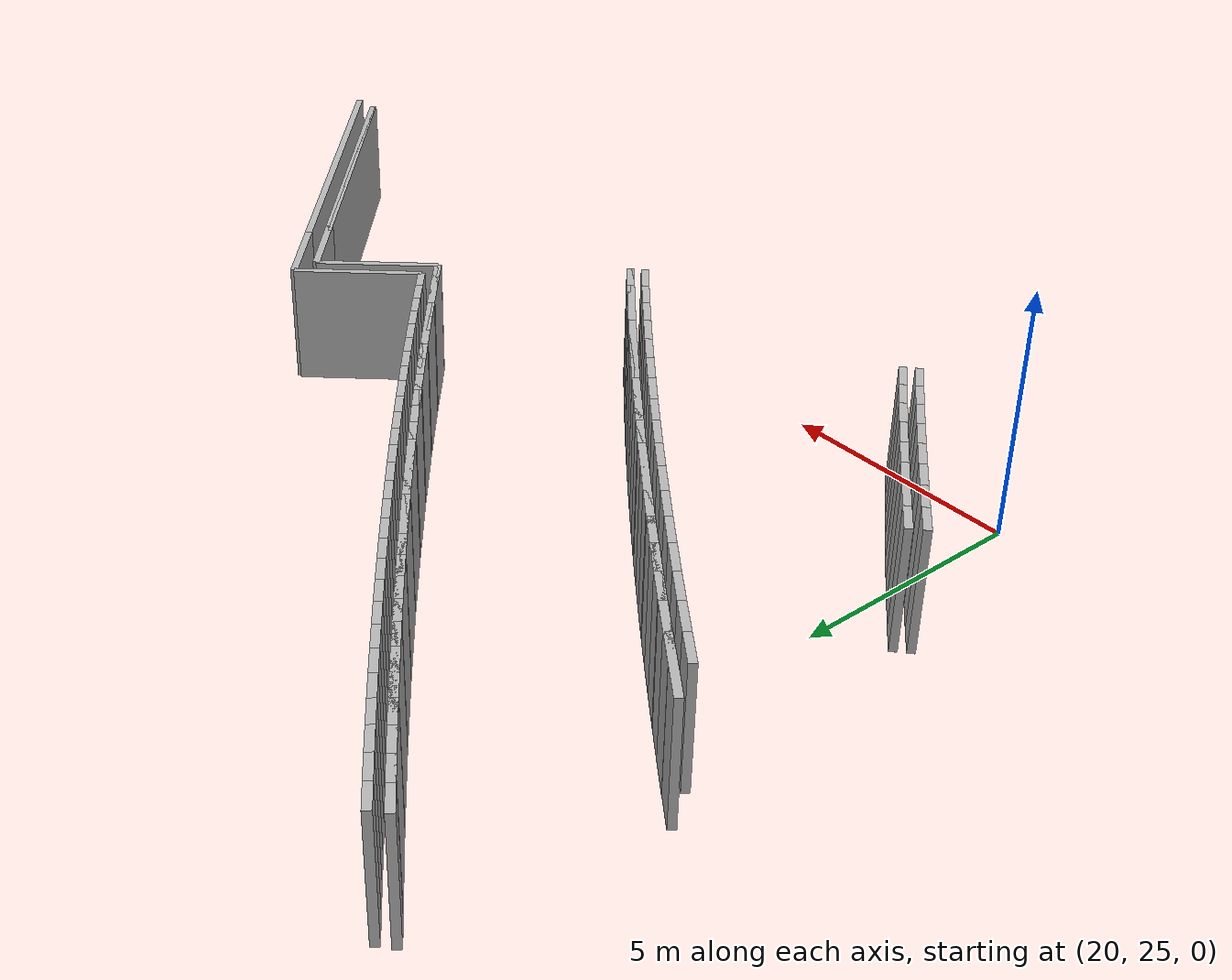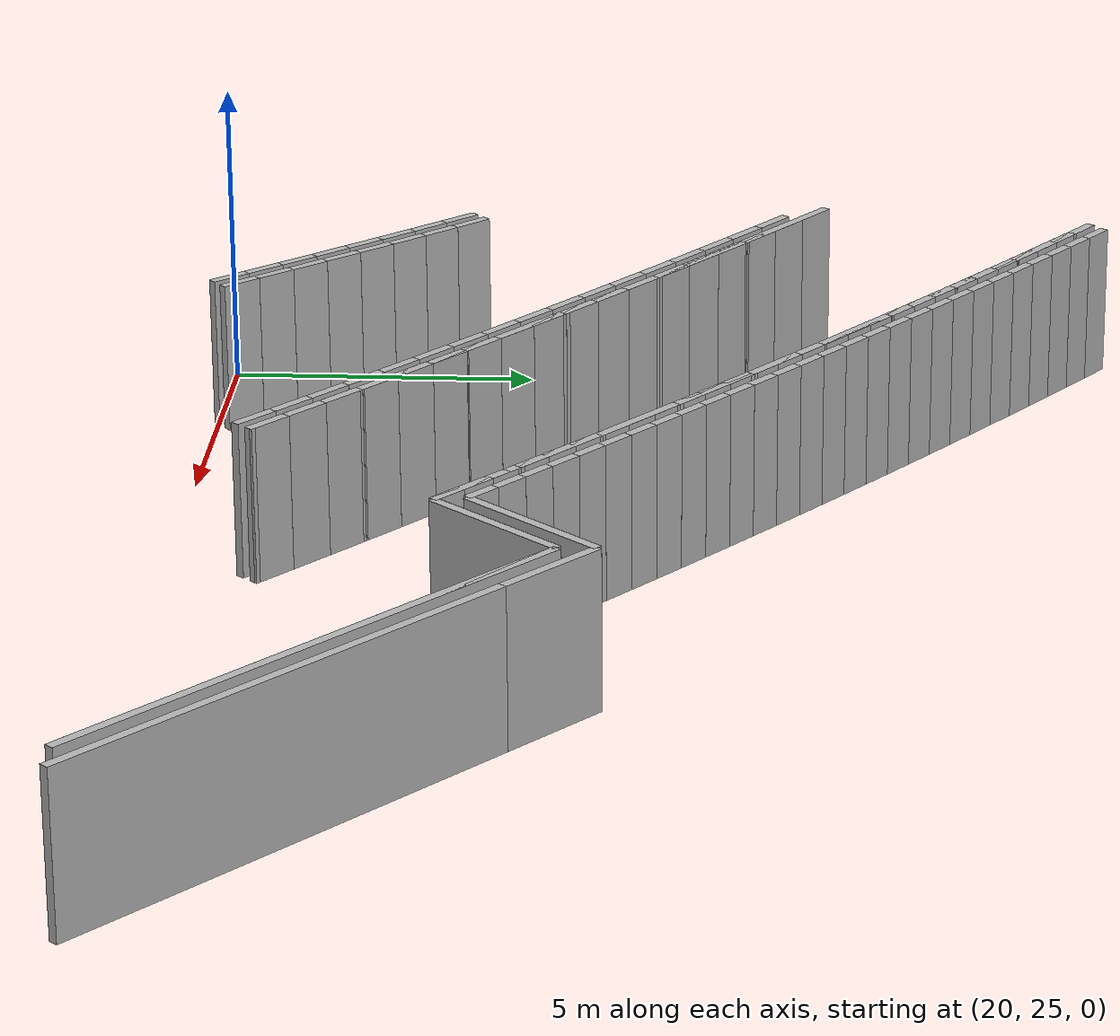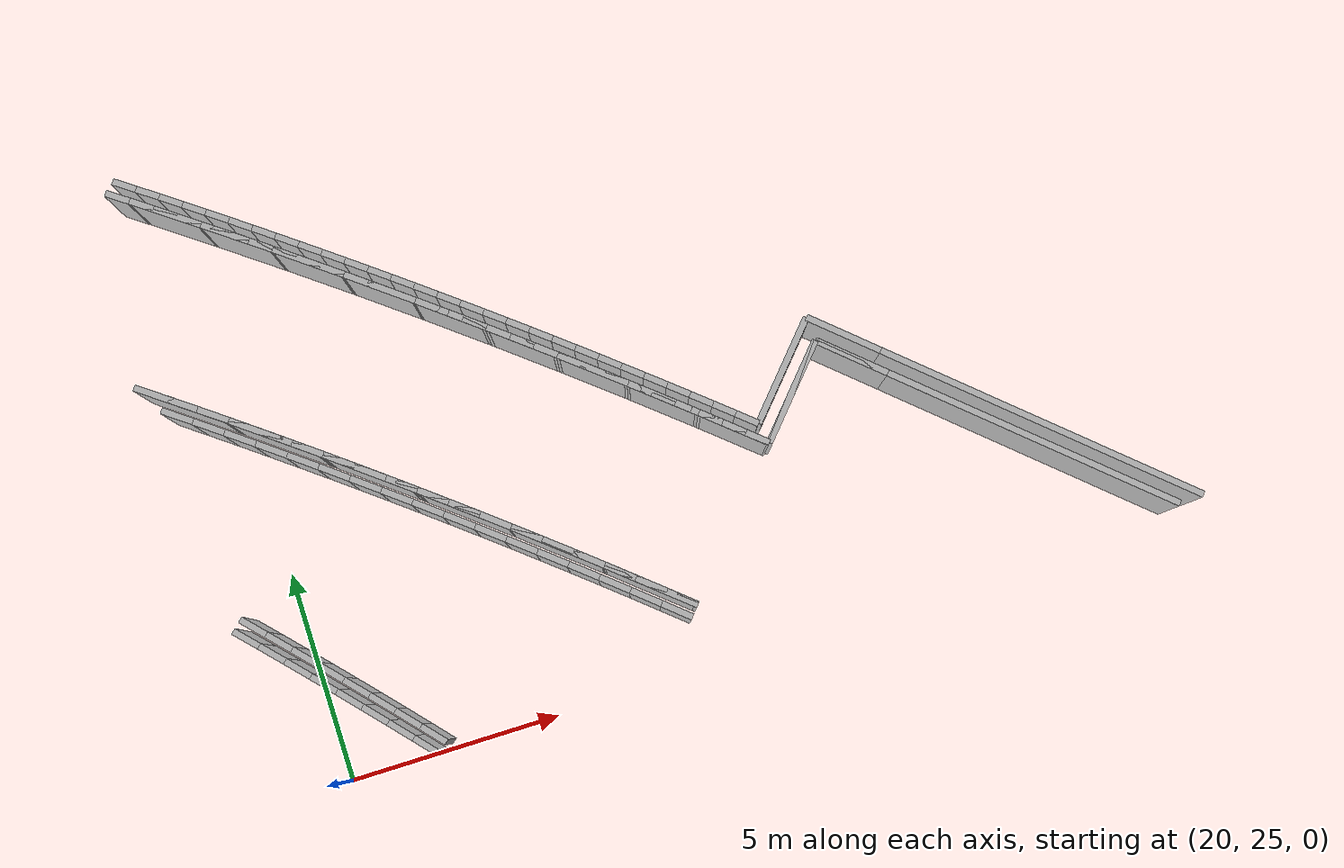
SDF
<sdf version="1.6">
 <model name="sps_0506">
  <static>1</static>
  <allow_auto_disable>0</allow_auto_disable>
  <link name="Wall105">
   <collision name="collision"><geometry><box><size>2.65269 0.15 2.5</size></box></geometry></collision>
   <visual name="visual">
    <geometry><box><size>2.65269 0.15 2.5</size></box></geometry>
    <transparency>0.0</transparency>
   </visual>
   <pose>32.2076 30.9139 1.25 0 0 -2.29715</pose>
  </link>
  <link name="Wall829">
   <collision name="collision"><geometry><box><size>7.95297 0.15 2.5</size></box></geometry></collision>
   <visual name="visual">
    <geometry><box><size>7.95297 0.15 2.5</size></box></geometry>
    <transparency>0.0</transparency>
   </visual>
   <pose>37.4426 28.0385 1.25 0 -0 2.41538</pose>
  </link>
  <link name="Wall830">
   <collision name="collision"><geometry><box><size>1.84698 0.15 2.5</size></box></geometry></collision>
   <visual name="visual">
    <geometry><box><size>1.84698 0.15 2.5</size></box></geometry>
    <transparency>0.0</transparency>
   </visual>
   <pose>33.779 31.2922 1.25 0 -0 2.41538</pose>
  </link>
  <link name="Wall2567">
   <collision name="collision"><geometry><box><size>2.54968 0.15 2.5</size></box></geometry></collision>
   <visual name="visual">
    <geometry><box><size>2.54968 0.15 2.5</size></box></geometry>
    <transparency>0.0</transparency>
   </visual>
   <pose>32.2754 30.3877 1.25 0 -0 0.84483</pose>
  </link>
  <link name="Wall2568">
   <collision name="collision"><geometry><box><size>1.80249 0.15 2.5</size></box></geometry></collision>
   <visual name="visual">
    <geometry><box><size>1.80249 0.15 2.5</size></box></geometry>
    <transparency>0.0</transparency>
   </visual>
   <pose>33.7956 30.7426 1.25 0 0 -0.726159</pose>
  </link>
  <link name="Wall2569">
   <collision name="collision"><geometry><box><size>7.19805 0.15 2.5</size></box></geometry></collision>
   <visual name="visual">
    <geometry><box><size>7.19805 0.15 2.5</size></box></geometry>
    <transparency>0.0</transparency>
   </visual>
   <pose>37.1605 27.7545 1.25 0 0 -0.726159</pose>
  </link>
  <link name="Wall3646">
   <collision name="collision"><geometry><box><size>1.7293 0.15 2.5</size></box></geometry></collision>
   <visual name="visual">
    <geometry><box><size>1.7293 0.15 2.5</size></box></geometry>
    <transparency>0.0</transparency>
   </visual>
   <pose>19.8935 38.5393 1.25 0 0 -0.624024</pose>
  </link>
  <link name="Wall3647">
   <collision name="collision"><geometry><box><size>1.72971 0.15 2.5</size></box></geometry></collision>
   <visual name="visual">
    <geometry><box><size>1.72971 0.15 2.5</size></box></geometry>
    <transparency>0.0</transparency>
   </visual>
   <pose>21.2917 37.5214 1.25 0 0 -0.634545</pose>
  </link>
  <link name="Wall3648">
   <collision name="collision"><geometry><box><size>1.72938 0.15 2.5</size></box></geometry></collision>
   <visual name="visual">
    <geometry><box><size>1.72938 0.15 2.5</size></box></geometry>
    <transparency>0.0</transparency>
   </visual>
   <pose>22.6793 36.4889 1.25 0 0 -0.644934</pose>
  </link>
  <link name="Wall3649">
   <collision name="collision"><geometry><box><size>1.7295 0.15 2.5</size></box></geometry></collision>
   <visual name="visual">
    <geometry><box><size>1.7295 0.15 2.5</size></box></geometry>
    <transparency>0.0</transparency>
   </visual>
   <pose>24.056 35.4422 1.25 0 0 -0.655168</pose>
  </link>
  <link name="Wall3650">
   <collision name="collision"><geometry><box><size>1.72947 0.15 2.5</size></box></geometry></collision>
   <visual name="visual">
    <geometry><box><size>1.72947 0.15 2.5</size></box></geometry>
    <transparency>0.0</transparency>
   </visual>
   <pose>25.4217 34.3812 1.25 0 0 -0.665729</pose>
  </link>
  <link name="Wall3651">
   <collision name="collision"><geometry><box><size>1.7296 0.15 2.5</size></box></geometry></collision>
   <visual name="visual">
    <geometry><box><size>1.7296 0.15 2.5</size></box></geometry>
    <transparency>0.0</transparency>
   </visual>
   <pose>26.7763 33.3059 1.25 0 0 -0.676212</pose>
  </link>
  <link name="Wall3652">
   <collision name="collision"><geometry><box><size>1.72943 0.15 2.5</size></box></geometry></collision>
   <visual name="visual">
    <geometry><box><size>1.72943 0.15 2.5</size></box></geometry>
    <transparency>0.0</transparency>
   </visual>
   <pose>28.1197 32.2166 1.25 0 0 -0.686514</pose>
  </link>
  <link name="Wall3653">
   <collision name="collision"><geometry><box><size>1.72965 0.15 2.5</size></box></geometry></collision>
   <visual name="visual">
    <geometry><box><size>1.72965 0.15 2.5</size></box></geometry>
    <transparency>0.0</transparency>
   </visual>
   <pose>29.4517 31.1134 1.25 0 0 -0.696902</pose>
  </link>
  <link name="Wall3654">
   <collision name="collision"><geometry><box><size>1.72951 0.15 2.5</size></box></geometry></collision>
   <visual name="visual">
    <geometry><box><size>1.72951 0.15 2.5</size></box></geometry>
    <transparency>0.0</transparency>
   </visual>
   <pose>30.7721 29.9963 1.25 0 0 -0.707463</pose>
  </link>
  <link name="Wall3655">
   <collision name="collision"><geometry><box><size>2.54994 0.15 2.5</size></box></geometry></collision>
   <visual name="visual">
    <geometry><box><size>2.54994 0.15 2.5</size></box></geometry>
    <transparency>0.0</transparency>
   </visual>
   <pose>32.2757 30.3878 1.25 0 -0 0.844858</pose>
  </link>
  <link name="Wall3656">
   <collision name="collision"><geometry><box><size>9.00057 0.15 2.5</size></box></geometry></collision>
   <visual name="visual">
    <geometry><box><size>9.00057 0.15 2.5</size></box></geometry>
    <transparency>0.0</transparency>
   </visual>
   <pose>36.4869 28.353 1.25 0 0 -0.726192</pose>
  </link>
  <link name="Wall3664">
   <collision name="collision"><geometry><box><size>2.27684 0.15 2.5</size></box></geometry></collision>
   <visual name="visual">
    <geometry><box><size>2.27684 0.15 2.5</size></box></geometry>
    <transparency>0.0</transparency>
   </visual>
   <pose>27.9263 27.1626 1.25 0 -0 2.43684</pose>
  </link>
  <link name="Wall3665">
   <collision name="collision"><geometry><box><size>2.27703 0.15 2.5</size></box></geometry></collision>
   <visual name="visual">
    <geometry><box><size>2.27703 0.15 2.5</size></box></geometry>
    <transparency>0.0</transparency>
   </visual>
   <pose>26.1815 28.6255 1.25 0 -0 2.4508</pose>
  </link>
  <link name="Wall3666">
   <collision name="collision"><geometry><box><size>2.27668 0.15 2.5</size></box></geometry></collision>
   <visual name="visual">
    <geometry><box><size>2.27668 0.15 2.5</size></box></geometry>
    <transparency>0.0</transparency>
   </visual>
   <pose>24.4167 30.064 1.25 0 -0 2.46461</pose>
  </link>
  <link name="Wall3667">
   <collision name="collision"><geometry><box><size>2.2769 0.15 2.5</size></box></geometry></collision>
   <visual name="visual">
    <geometry><box><size>2.2769 0.15 2.5</size></box></geometry>
    <transparency>0.0</transparency>
   </visual>
   <pose>22.6322 31.4778 1.25 0 -0 2.47861</pose>
  </link>
  <link name="Wall3668">
   <collision name="collision"><geometry><box><size>2.27673 0.15 2.5</size></box></geometry></collision>
   <visual name="visual">
    <geometry><box><size>2.27673 0.15 2.5</size></box></geometry>
    <transparency>0.0</transparency>
   </visual>
   <pose>20.828 32.8665 1.25 0 -0 2.49259</pose>
  </link>
  <link name="Wall3669">
   <collision name="collision"><geometry><box><size>2.27664 0.15 2.5</size></box></geometry></collision>
   <visual name="visual">
    <geometry><box><size>2.27664 0.15 2.5</size></box></geometry>
    <transparency>0.0</transparency>
   </visual>
   <pose>19.0047 34.2298 1.25 0 -0 2.50652</pose>
  </link>
  <link name="Wall6866">
   <collision name="collision"><geometry><box><size>0.576462 0.15 2.5</size></box></geometry></collision>
   <visual name="visual">
    <geometry><box><size>0.576462 0.15 2.5</size></box></geometry>
    <transparency>0.0</transparency>
   </visual>
   <pose>31.2107 29.6224 1.25 0 -0 2.43053</pose>
  </link>
  <link name="Wall6867">
   <collision name="collision"><geometry><box><size>0.5765 0.15 2.5</size></box></geometry></collision>
   <visual name="visual">
    <geometry><box><size>0.5765 0.15 2.5</size></box></geometry>
    <transparency>0.0</transparency>
   </visual>
   <pose>30.7732 29.9978 1.25 0 -0 2.43436</pose>
  </link>
  <link name="Wall6868">
   <collision name="collision"><geometry><box><size>0.576652 0.15 2.5</size></box></geometry></collision>
   <visual name="visual">
    <geometry><box><size>0.576652 0.15 2.5</size></box></geometry>
    <transparency>0.0</transparency>
   </visual>
   <pose>30.3343 30.3717 1.25 0 -0 2.43764</pose>
  </link>
  <link name="Wall6869">
   <collision name="collision"><geometry><box><size>0.576519 0.15 2.5</size></box></geometry></collision>
   <visual name="visual">
    <geometry><box><size>0.576519 0.15 2.5</size></box></geometry>
    <transparency>0.0</transparency>
   </visual>
   <pose>29.8941 30.7441 1.25 0 -0 2.44119</pose>
  </link>
  <link name="Wall6870">
   <collision name="collision"><geometry><box><size>0.576433 0.15 2.5</size></box></geometry></collision>
   <visual name="visual">
    <geometry><box><size>0.576433 0.15 2.5</size></box></geometry>
    <transparency>0.0</transparency>
   </visual>
   <pose>29.4527 31.1149 1.25 0 -0 2.44466</pose>
  </link>
  <link name="Wall6871">
   <collision name="collision"><geometry><box><size>0.576612 0.15 2.5</size></box></geometry></collision>
   <visual name="visual">
    <geometry><box><size>0.576612 0.15 2.5</size></box></geometry>
    <transparency>0.0</transparency>
   </visual>
   <pose>29.0099 31.4842 1.25 0 -0 2.44809</pose>
  </link>
  <link name="Wall6872">
   <collision name="collision"><geometry><box><size>0.576376 0.15 2.5</size></box></geometry></collision>
   <visual name="visual">
    <geometry><box><size>0.576376 0.15 2.5</size></box></geometry>
    <transparency>0.0</transparency>
   </visual>
   <pose>28.5659 31.8519 1.25 0 -0 2.45174</pose>
  </link>
  <link name="Wall6873">
   <collision name="collision"><geometry><box><size>0.576569 0.15 2.5</size></box></geometry></collision>
   <visual name="visual">
    <geometry><box><size>0.576569 0.15 2.5</size></box></geometry>
    <transparency>0.0</transparency>
   </visual>
   <pose>28.1207 32.218 1.25 0 -0 2.45516</pose>
  </link>
  <link name="Wall6874">
   <collision name="collision"><geometry><box><size>0.576588 0.15 2.5</size></box></geometry></collision>
   <visual name="visual">
    <geometry><box><size>0.576588 0.15 2.5</size></box></geometry>
    <transparency>0.0</transparency>
   </visual>
   <pose>27.6741 32.5827 1.25 0 -0 2.45847</pose>
  </link>
  <link name="Wall6875">
   <collision name="collision"><geometry><box><size>0.57646 0.15 2.5</size></box></geometry></collision>
   <visual name="visual">
    <geometry><box><size>0.57646 0.15 2.5</size></box></geometry>
    <transparency>0.0</transparency>
   </visual>
   <pose>27.2262 32.9458 1.25 0 -0 2.46211</pose>
  </link>
  <link name="Wall6876">
   <collision name="collision"><geometry><box><size>0.576444 0.15 2.5</size></box></geometry></collision>
   <visual name="visual">
    <geometry><box><size>0.576444 0.15 2.5</size></box></geometry>
    <transparency>0.0</transparency>
   </visual>
   <pose>26.7772 33.3073 1.25 0 -0 2.46535</pose>
  </link>
  <link name="Wall6877">
   <collision name="collision"><geometry><box><size>0.576407 0.15 2.5</size></box></geometry></collision>
   <visual name="visual">
    <geometry><box><size>0.576407 0.15 2.5</size></box></geometry>
    <transparency>0.0</transparency>
   </visual>
   <pose>26.327 33.6673 1.25 0 -0 2.46882</pose>
  </link>
  <link name="Wall6878">
   <collision name="collision"><geometry><box><size>0.576633 0.15 2.5</size></box></geometry></collision>
   <visual name="visual">
    <geometry><box><size>0.576633 0.15 2.5</size></box></geometry>
    <transparency>0.0</transparency>
   </visual>
   <pose>25.8755 34.0258 1.25 0 -0 2.47224</pose>
  </link>
  <link name="Wall6879">
   <collision name="collision"><geometry><box><size>0.576448 0.15 2.5</size></box></geometry></collision>
   <visual name="visual">
    <geometry><box><size>0.576448 0.15 2.5</size></box></geometry>
    <transparency>0.0</transparency>
   </visual>
   <pose>25.4228 34.3827 1.25 0 -0 2.4759</pose>
  </link>
  <link name="Wall6880">
   <collision name="collision"><geometry><box><size>0.576544 0.15 2.5</size></box></geometry></collision>
   <visual name="visual">
    <geometry><box><size>0.576544 0.15 2.5</size></box></geometry>
    <transparency>0.0</transparency>
   </visual>
   <pose>24.9688 34.738 1.25 0 -0 2.47912</pose>
  </link>
  <link name="Wall6881">
   <collision name="collision"><geometry><box><size>0.576529 0.15 2.5</size></box></geometry></collision>
   <visual name="visual">
    <geometry><box><size>0.576529 0.15 2.5</size></box></geometry>
    <transparency>0.0</transparency>
   </visual>
   <pose>24.5135 35.0917 1.25 0 -0 2.48312</pose>
  </link>
  <link name="Wall6882">
   <collision name="collision"><geometry><box><size>0.576531 0.15 2.5</size></box></geometry></collision>
   <visual name="visual">
    <geometry><box><size>0.576531 0.15 2.5</size></box></geometry>
    <transparency>0.0</transparency>
   </visual>
   <pose>24.057 35.4438 1.25 0 -0 2.48606</pose>
  </link>
  <link name="Wall6883">
   <collision name="collision"><geometry><box><size>0.576447 0.15 2.5</size></box></geometry></collision>
   <visual name="visual">
    <geometry><box><size>0.576447 0.15 2.5</size></box></geometry>
    <transparency>0.0</transparency>
   </visual>
   <pose>23.5993 35.7943 1.25 0 -0 2.49009</pose>
  </link>
  <link name="Wall6884">
   <collision name="collision"><geometry><box><size>0.576606 0.15 2.5</size></box></geometry></collision>
   <visual name="visual">
    <geometry><box><size>0.576606 0.15 2.5</size></box></geometry>
    <transparency>0.0</transparency>
   </visual>
   <pose>23.1403 36.1432 1.25 0 -0 2.49322</pose>
  </link>
  <link name="Wall6885">
   <collision name="collision"><geometry><box><size>0.576368 0.15 2.5</size></box></geometry></collision>
   <visual name="visual">
    <geometry><box><size>0.576368 0.15 2.5</size></box></geometry>
    <transparency>0.0</transparency>
   </visual>
   <pose>22.6802 36.4905 1.25 0 -0 2.49676</pose>
  </link>
  <link name="Wall6886">
   <collision name="collision"><geometry><box><size>0.576417 0.15 2.5</size></box></geometry></collision>
   <visual name="visual">
    <geometry><box><size>0.576417 0.15 2.5</size></box></geometry>
    <transparency>0.0</transparency>
   </visual>
   <pose>22.219 36.8362 1.25 0 -0 2.5</pose>
  </link>
  <link name="Wall6887">
   <collision name="collision"><geometry><box><size>0.576596 0.15 2.5</size></box></geometry></collision>
   <visual name="visual">
    <geometry><box><size>0.576596 0.15 2.5</size></box></geometry>
    <transparency>0.0</transparency>
   </visual>
   <pose>21.7565 37.1804 1.25 0 -0 2.50366</pose>
  </link>
  <link name="Wall6888">
   <collision name="collision"><geometry><box><size>0.576671 0.15 2.5</size></box></geometry></collision>
   <visual name="visual">
    <geometry><box><size>0.576671 0.15 2.5</size></box></geometry>
    <transparency>0.0</transparency>
   </visual>
   <pose>21.2927 37.523 1.25 0 -0 2.50705</pose>
  </link>
  <link name="Wall6889">
   <collision name="collision"><geometry><box><size>0.576448 0.15 2.5</size></box></geometry></collision>
   <visual name="visual">
    <geometry><box><size>0.576448 0.15 2.5</size></box></geometry>
    <transparency>0.0</transparency>
   </visual>
   <pose>20.8278 37.864 1.25 0 -0 2.51044</pose>
  </link>
  <link name="Wall6890">
   <collision name="collision"><geometry><box><size>0.576429 0.15 2.5</size></box></geometry></collision>
   <visual name="visual">
    <geometry><box><size>0.576429 0.15 2.5</size></box></geometry>
    <transparency>0.0</transparency>
   </visual>
   <pose>20.3617 38.2033 1.25 0 -0 2.51408</pose>
  </link>
  <link name="Wall6891">
   <collision name="collision"><geometry><box><size>0.576552 0.15 2.5</size></box></geometry></collision>
   <visual name="visual">
    <geometry><box><size>0.576552 0.15 2.5</size></box></geometry>
    <transparency>0.0</transparency>
   </visual>
   <pose>19.8945 38.5409 1.25 0 -0 2.51776</pose>
  </link>
  <link name="Wall6892">
   <collision name="collision"><geometry><box><size>0.57652 0.15 2.5</size></box></geometry></collision>
   <visual name="visual">
    <geometry><box><size>0.57652 0.15 2.5</size></box></geometry>
    <transparency>0.0</transparency>
   </visual>
   <pose>19.426 38.8769 1.25 0 -0 2.52111</pose>
  </link>
  <link name="Wall6893">
   <collision name="collision"><geometry><box><size>0.57631 0.15 2.5</size></box></geometry></collision>
   <visual name="visual">
    <geometry><box><size>0.57631 0.15 2.5</size></box></geometry>
    <transparency>0.0</transparency>
   </visual>
   <pose>18.9564 39.2113 1.25 0 -0 2.52436</pose>
  </link>
  <link name="Wall9582">
   <collision name="collision"><geometry><box><size>0.757762 0.15 2.5</size></box></geometry></collision>
   <visual name="visual">
    <geometry><box><size>0.757762 0.15 2.5</size></box></geometry>
    <transparency>0.0</transparency>
   </visual>
   <pose>28.3106 26.4453 1.25 0 -0 2.4307</pose>
  </link>
  <link name="Wall9583">
   <collision name="collision"><geometry><box><size>0.757564 0.15 2.5</size></box></geometry></collision>
   <visual name="visual">
    <geometry><box><size>0.757564 0.15 2.5</size></box></geometry>
    <transparency>0.0</transparency>
   </visual>
   <pose>27.7353 26.9383 1.25 0 -0 2.43547</pose>
  </link>
  <link name="Wall9584">
   <collision name="collision"><geometry><box><size>0.757562 0.15 2.5</size></box></geometry></collision>
   <visual name="visual">
    <geometry><box><size>0.757562 0.15 2.5</size></box></geometry>
    <transparency>0.0</transparency>
   </visual>
   <pose>27.1576 27.4285 1.25 0 -0 2.44032</pose>
  </link>
  <link name="Wall9585">
   <collision name="collision"><geometry><box><size>0.757735 0.15 2.5</size></box></geometry></collision>
   <visual name="visual">
    <geometry><box><size>0.757735 0.15 2.5</size></box></geometry>
    <transparency>0.0</transparency>
   </visual>
   <pose>26.5777 27.916 1.25 0 -0 2.44494</pose>
  </link>
  <link name="Wall9586">
   <collision name="collision"><geometry><box><size>0.757558 0.15 2.5</size></box></geometry></collision>
   <visual name="visual">
    <geometry><box><size>0.757558 0.15 2.5</size></box></geometry>
    <transparency>0.0</transparency>
   </visual>
   <pose>25.9954 28.4007 1.25 0 -0 2.44988</pose>
  </link>
  <link name="Wall9587">
   <collision name="collision"><geometry><box><size>0.757536 0.15 2.5</size></box></geometry></collision>
   <visual name="visual">
    <geometry><box><size>0.757536 0.15 2.5</size></box></geometry>
    <transparency>0.0</transparency>
   </visual>
   <pose>25.4108 28.8826 1.25 0 -0 2.45434</pose>
  </link>
  <link name="Wall9588">
   <collision name="collision"><geometry><box><size>0.757663 0.15 2.5</size></box></geometry></collision>
   <visual name="visual">
    <geometry><box><size>0.757663 0.15 2.5</size></box></geometry>
    <transparency>0.0</transparency>
   </visual>
   <pose>24.8241 29.3619 1.25 0 -0 2.45885</pose>
  </link>
  <link name="Wall9589">
   <collision name="collision"><geometry><box><size>0.757547 0.15 2.5</size></box></geometry></collision>
   <visual name="visual">
    <geometry><box><size>0.757547 0.15 2.5</size></box></geometry>
    <transparency>0.0</transparency>
   </visual>
   <pose>24.2352 29.8384 1.25 0 -0 2.46391</pose>
  </link>
  <link name="Wall9590">
   <collision name="collision"><geometry><box><size>0.757564 0.15 2.5</size></box></geometry></collision>
   <visual name="visual">
    <geometry><box><size>0.757564 0.15 2.5</size></box></geometry>
    <transparency>0.0</transparency>
   </visual>
   <pose>23.644 30.3121 1.25 0 -0 2.46826</pose>
  </link>
  <link name="Wall9591">
   <collision name="collision"><geometry><box><size>0.757569 0.15 2.5</size></box></geometry></collision>
   <visual name="visual">
    <geometry><box><size>0.757569 0.15 2.5</size></box></geometry>
    <transparency>0.0</transparency>
   </visual>
   <pose>23.0506 30.783 1.25 0 -0 2.47331</pose>
  </link>
  <link name="Wall9592">
   <collision name="collision"><geometry><box><size>0.757525 0.15 2.5</size></box></geometry></collision>
   <visual name="visual">
    <geometry><box><size>0.757525 0.15 2.5</size></box></geometry>
    <transparency>0.0</transparency>
   </visual>
   <pose>22.4549 31.251 1.25 0 -0 2.47808</pose>
  </link>
  <link name="Wall9593">
   <collision name="collision"><geometry><box><size>0.757577 0.15 2.5</size></box></geometry></collision>
   <visual name="visual">
    <geometry><box><size>0.757577 0.15 2.5</size></box></geometry>
    <transparency>0.0</transparency>
   </visual>
   <pose>21.857 31.7163 1.25 0 -0 2.48232</pose>
  </link>
  <link name="Wall9594">
   <collision name="collision"><geometry><box><size>0.757599 0.15 2.5</size></box></geometry></collision>
   <visual name="visual">
    <geometry><box><size>0.757599 0.15 2.5</size></box></geometry>
    <transparency>0.0</transparency>
   </visual>
   <pose>21.257 32.1788 1.25 0 -0 2.48742</pose>
  </link>
  <link name="Wall9595">
   <collision name="collision"><geometry><box><size>0.757643 0.15 2.5</size></box></geometry></collision>
   <visual name="visual">
    <geometry><box><size>0.757643 0.15 2.5</size></box></geometry>
    <transparency>0.0</transparency>
   </visual>
   <pose>20.6547 32.6384 1.25 0 -0 2.49213</pose>
  </link>
  <link name="Wall9596">
   <collision name="collision"><geometry><box><size>0.757703 0.15 2.5</size></box></geometry></collision>
   <visual name="visual">
    <geometry><box><size>0.757703 0.15 2.5</size></box></geometry>
    <transparency>0.0</transparency>
   </visual>
   <pose>20.0503 33.0952 1.25 0 -0 2.49683</pose>
  </link>
  <link name="Wall9597">
   <collision name="collision"><geometry><box><size>0.757634 0.15 2.5</size></box></geometry></collision>
   <visual name="visual">
    <geometry><box><size>0.757634 0.15 2.5</size></box></geometry>
    <transparency>0.0</transparency>
   </visual>
   <pose>19.4437 33.5492 1.25 0 -0 2.50139</pose>
  </link>
  <link name="Wall9598">
   <collision name="collision"><geometry><box><size>0.757654 0.15 2.5</size></box></geometry></collision>
   <visual name="visual">
    <geometry><box><size>0.757654 0.15 2.5</size></box></geometry>
    <transparency>0.0</transparency>
   </visual>
   <pose>18.835 34.0003 1.25 0 -0 2.50623</pose>
  </link>
  <link name="Wall21079">
   <collision name="collision"><geometry><box><size>0.759065 0.15 2.5</size></box></geometry></collision>
   <visual name="visual">
    <geometry><box><size>0.759065 0.15 2.5</size></box></geometry>
    <transparency>0.0</transparency>
   </visual>
   <pose>28.5052 26.6721 1.25 0 -0 2.43229</pose>
  </link>
  <link name="Wall21080">
   <collision name="collision"><geometry><box><size>0.75907 0.15 2.5</size></box></geometry></collision>
   <visual name="visual">
    <geometry><box><size>0.75907 0.15 2.5</size></box></geometry>
    <transparency>0.0</transparency>
   </visual>
   <pose>27.9282 27.1652 1.25 0 -0 2.43673</pose>
  </link>
  <link name="Wall21081">
   <collision name="collision"><geometry><box><size>0.758933 0.15 2.5</size></box></geometry></collision>
   <visual name="visual">
    <geometry><box><size>0.758933 0.15 2.5</size></box></geometry>
    <transparency>0.0</transparency>
   </visual>
   <pose>27.3489 27.6556 1.25 0 -0 2.44143</pose>
  </link>
  <link name="Wall21082">
   <collision name="collision"><geometry><box><size>0.758977 0.15 2.5</size></box></geometry></collision>
   <visual name="visual">
    <geometry><box><size>0.758977 0.15 2.5</size></box></geometry>
    <transparency>0.0</transparency>
   </visual>
   <pose>26.7674 28.1433 1.25 0 -0 2.44599</pose>
  </link>
  <link name="Wall21083">
   <collision name="collision"><geometry><box><size>0.758967 0.15 2.5</size></box></geometry></collision>
   <visual name="visual">
    <geometry><box><size>0.758967 0.15 2.5</size></box></geometry>
    <transparency>0.0</transparency>
   </visual>
   <pose>26.1836 28.6283 1.25 0 -0 2.45079</pose>
  </link>
  <link name="Wall21084">
   <collision name="collision"><geometry><box><size>0.758966 0.15 2.5</size></box></geometry></collision>
   <visual name="visual">
    <geometry><box><size>0.758966 0.15 2.5</size></box></geometry>
    <transparency>0.0</transparency>
   </visual>
   <pose>25.5975 29.1105 1.25 0 -0 2.45547</pose>
  </link>
  <link name="Wall21085">
   <collision name="collision"><geometry><box><size>0.758857 0.15 2.5</size></box></geometry></collision>
   <visual name="visual">
    <geometry><box><size>0.758857 0.15 2.5</size></box></geometry>
    <transparency>0.0</transparency>
   </visual>
   <pose>25.0091 29.5899 1.25 0 -0 2.46023</pose>
  </link>
  <link name="Wall21086">
   <collision name="collision"><geometry><box><size>0.758909 0.15 2.5</size></box></geometry></collision>
   <visual name="visual">
    <geometry><box><size>0.758909 0.15 2.5</size></box></geometry>
    <transparency>0.0</transparency>
   </visual>
   <pose>24.4187 30.0666 1.25 0 -0 2.46463</pose>
  </link>
  <link name="Wall21087">
   <collision name="collision"><geometry><box><size>0.758919 0.15 2.5</size></box></geometry></collision>
   <visual name="visual">
    <geometry><box><size>0.758919 0.15 2.5</size></box></geometry>
    <transparency>0.0</transparency>
   </visual>
   <pose>23.826 30.5406 1.25 0 -0 2.46938</pose>
  </link>
  <link name="Wall21088">
   <collision name="collision"><geometry><box><size>0.759049 0.15 2.5</size></box></geometry></collision>
   <visual name="visual">
    <geometry><box><size>0.759049 0.15 2.5</size></box></geometry>
    <transparency>0.0</transparency>
   </visual>
   <pose>23.2311 31.0119 1.25 0 -0 2.47382</pose>
  </link>
  <link name="Wall21089">
   <collision name="collision"><geometry><box><size>0.75875 0.15 2.5</size></box></geometry></collision>
   <visual name="visual">
    <geometry><box><size>0.75875 0.15 2.5</size></box></geometry>
    <transparency>0.0</transparency>
   </visual>
   <pose>22.6341 31.4804 1.25 0 -0 2.47862</pose>
  </link>
  <link name="Wall21090">
   <collision name="collision"><geometry><box><size>0.759056 0.15 2.5</size></box></geometry></collision>
   <visual name="visual">
    <geometry><box><size>0.759056 0.15 2.5</size></box></geometry>
    <transparency>0.0</transparency>
   </visual>
   <pose>22.0348 31.9461 1.25 0 -0 2.48322</pose>
  </link>
  <link name="Wall21091">
   <collision name="collision"><geometry><box><size>0.759085 0.15 2.5</size></box></geometry></collision>
   <visual name="visual">
    <geometry><box><size>0.759085 0.15 2.5</size></box></geometry>
    <transparency>0.0</transparency>
   </visual>
   <pose>21.4333 32.4091 1.25 0 -0 2.48791</pose>
  </link>
  <link name="Wall21092">
   <collision name="collision"><geometry><box><size>0.758837 0.15 2.5</size></box></geometry></collision>
   <visual name="visual">
    <geometry><box><size>0.758837 0.15 2.5</size></box></geometry>
    <transparency>0.0</transparency>
   </visual>
   <pose>20.8297 32.8692 1.25 0 -0 2.49272</pose>
  </link>
  <link name="Wall21093">
   <collision name="collision"><geometry><box><size>0.759034 0.15 2.5</size></box></geometry></collision>
   <visual name="visual">
    <geometry><box><size>0.759034 0.15 2.5</size></box></geometry>
    <transparency>0.0</transparency>
   </visual>
   <pose>20.2241 33.3265 1.25 0 -0 2.49705</pose>
  </link>
  <link name="Wall21094">
   <collision name="collision"><geometry><box><size>0.758868 0.15 2.5</size></box></geometry></collision>
   <visual name="visual">
    <geometry><box><size>0.758868 0.15 2.5</size></box></geometry>
    <transparency>0.0</transparency>
   </visual>
   <pose>19.6163 33.781 1.25 0 -0 2.5019</pose>
  </link>
  <link name="Wall21095">
   <collision name="collision"><geometry><box><size>0.758963 0.15 2.5</size></box></geometry></collision>
   <visual name="visual">
    <geometry><box><size>0.758963 0.15 2.5</size></box></geometry>
    <transparency>0.0</transparency>
   </visual>
   <pose>19.0063 34.2326 1.25 0 -0 2.5066</pose>
  </link>
  <link name="Wall21121">
   <collision name="collision"><geometry><box><size>0.560975 0.15 2.5</size></box></geometry></collision>
   <visual name="visual">
    <geometry><box><size>0.560975 0.15 2.5</size></box></geometry>
    <transparency>0.0</transparency>
   </visual>
   <pose>31.1138 30.1049 1.25 0 -0 2.43274</pose>
  </link>
  <link name="Wall21122">
   <collision name="collision"><geometry><box><size>0.561124 0.15 2.5</size></box></geometry></collision>
   <visual name="visual">
    <geometry><box><size>0.561124 0.15 2.5</size></box></geometry>
    <transparency>0.0</transparency>
   </visual>
   <pose>30.6872 30.4694 1.25 0 -0 2.43612</pose>
  </link>
  <link name="Wall21123">
   <collision name="collision"><geometry><box><size>0.560848 0.15 2.5</size></box></geometry></collision>
   <visual name="visual">
    <geometry><box><size>0.560848 0.15 2.5</size></box></geometry>
    <transparency>0.0</transparency>
   </visual>
   <pose>30.2595 30.8324 1.25 0 -0 2.43955</pose>
  </link>
  <link name="Wall21124">
   <collision name="collision"><geometry><box><size>0.56097 0.15 2.5</size></box></geometry></collision>
   <visual name="visual">
    <geometry><box><size>0.56097 0.15 2.5</size></box></geometry>
    <transparency>0.0</transparency>
   </visual>
   <pose>29.8306 31.1939 1.25 0 -0 2.44301</pose>
  </link>
  <link name="Wall21125">
   <collision name="collision"><geometry><box><size>0.561045 0.15 2.5</size></box></geometry></collision>
   <visual name="visual">
    <geometry><box><size>0.561045 0.15 2.5</size></box></geometry>
    <transparency>0.0</transparency>
   </visual>
   <pose>29.4005 31.554 1.25 0 -0 2.44624</pose>
  </link>
  <link name="Wall21126">
   <collision name="collision"><geometry><box><size>0.56093 0.15 2.5</size></box></geometry></collision>
   <visual name="visual">
    <geometry><box><size>0.56093 0.15 2.5</size></box></geometry>
    <transparency>0.0</transparency>
   </visual>
   <pose>28.9691 31.9126 1.25 0 -0 2.44989</pose>
  </link>
  <link name="Wall21127">
   <collision name="collision"><geometry><box><size>0.561094 0.15 2.5</size></box></geometry></collision>
   <visual name="visual">
    <geometry><box><size>0.561094 0.15 2.5</size></box></geometry>
    <transparency>0.0</transparency>
   </visual>
   <pose>28.5365 32.2698 1.25 0 -0 2.45295</pose>
  </link>
  <link name="Wall21128">
   <collision name="collision"><geometry><box><size>0.561023 0.15 2.5</size></box></geometry></collision>
   <visual name="visual">
    <geometry><box><size>0.561023 0.15 2.5</size></box></geometry>
    <transparency>0.0</transparency>
   </visual>
   <pose>28.1027 32.6256 1.25 0 -0 2.45637</pose>
  </link>
  <link name="Wall21129">
   <collision name="collision"><geometry><box><size>0.560929 0.15 2.5</size></box></geometry></collision>
   <visual name="visual">
    <geometry><box><size>0.560929 0.15 2.5</size></box></geometry>
    <transparency>0.0</transparency>
   </visual>
   <pose>27.6677 32.9798 1.25 0 -0 2.46002</pose>
  </link>
  <link name="Wall21130">
   <collision name="collision"><geometry><box><size>0.560948 0.15 2.5</size></box></geometry></collision>
   <visual name="visual">
    <geometry><box><size>0.560948 0.15 2.5</size></box></geometry>
    <transparency>0.0</transparency>
   </visual>
   <pose>27.2315 33.3325 1.25 0 -0 2.46327</pose>
  </link>
  <link name="Wall21131">
   <collision name="collision"><geometry><box><size>0.561068 0.15 2.5</size></box></geometry></collision>
   <visual name="visual">
    <geometry><box><size>0.561068 0.15 2.5</size></box></geometry>
    <transparency>0.0</transparency>
   </visual>
   <pose>26.7941 33.6838 1.25 0 -0 2.46665</pose>
  </link>
  <link name="Wall21132">
   <collision name="collision"><geometry><box><size>0.560986 0.15 2.5</size></box></geometry></collision>
   <visual name="visual">
    <geometry><box><size>0.560986 0.15 2.5</size></box></geometry>
    <transparency>0.0</transparency>
   </visual>
   <pose>26.3554 34.0336 1.25 0 -0 2.47015</pose>
  </link>
  <link name="Wall21133">
   <collision name="collision"><geometry><box><size>0.561023 0.15 2.5</size></box></geometry></collision>
   <visual name="visual">
    <geometry><box><size>0.561023 0.15 2.5</size></box></geometry>
    <transparency>0.0</transparency>
   </visual>
   <pose>25.9156 34.3819 1.25 0 -0 2.47339</pose>
  </link>
  <link name="Wall21134">
   <collision name="collision"><geometry><box><size>0.561002 0.15 2.5</size></box></geometry></collision>
   <visual name="visual">
    <geometry><box><size>0.561002 0.15 2.5</size></box></geometry>
    <transparency>0.0</transparency>
   </visual>
   <pose>25.4747 34.7287 1.25 0 -0 2.47696</pose>
  </link>
  <link name="Wall21135">
   <collision name="collision"><geometry><box><size>0.560843 0.15 2.5</size></box></geometry></collision>
   <visual name="visual">
    <geometry><box><size>0.560843 0.15 2.5</size></box></geometry>
    <transparency>0.0</transparency>
   </visual>
   <pose>25.0326 35.0739 1.25 0 -0 2.48033</pose>
  </link>
  <link name="Wall21136">
   <collision name="collision"><geometry><box><size>0.560862 0.15 2.5</size></box></geometry></collision>
   <visual name="visual">
    <geometry><box><size>0.560862 0.15 2.5</size></box></geometry>
    <transparency>0.0</transparency>
   </visual>
   <pose>24.5893 35.4176 1.25 0 -0 2.48366</pose>
  </link>
  <link name="Wall21137">
   <collision name="collision"><geometry><box><size>0.561155 0.15 2.5</size></box></geometry></collision>
   <visual name="visual">
    <geometry><box><size>0.561155 0.15 2.5</size></box></geometry>
    <transparency>0.0</transparency>
   </visual>
   <pose>24.1449 35.7599 1.25 0 -0 2.48708</pose>
  </link>
  <link name="Wall21138">
   <collision name="collision"><geometry><box><size>0.561126 0.15 2.5</size></box></geometry></collision>
   <visual name="visual">
    <geometry><box><size>0.561126 0.15 2.5</size></box></geometry>
    <transparency>0.0</transparency>
   </visual>
   <pose>23.6991 36.1008 1.25 0 -0 2.49019</pose>
  </link>
  <link name="Wall21139">
   <collision name="collision"><geometry><box><size>0.560796 0.15 2.5</size></box></geometry></collision>
   <visual name="visual">
    <geometry><box><size>0.560796 0.15 2.5</size></box></geometry>
    <transparency>0.0</transparency>
   </visual>
   <pose>23.2524 36.4401 1.25 0 -0 2.49385</pose>
  </link>
  <link name="Wall21140">
   <collision name="collision"><geometry><box><size>0.560913 0.15 2.5</size></box></geometry></collision>
   <visual name="visual">
    <geometry><box><size>0.560913 0.15 2.5</size></box></geometry>
    <transparency>0.0</transparency>
   </visual>
   <pose>22.8046 36.7778 1.25 0 -0 2.497</pose>
  </link>
  <link name="Wall21141">
   <collision name="collision"><geometry><box><size>0.561208 0.15 2.5</size></box></geometry></collision>
   <visual name="visual">
    <geometry><box><size>0.561208 0.15 2.5</size></box></geometry>
    <transparency>0.0</transparency>
   </visual>
   <pose>22.3556 37.1141 1.25 0 -0 2.50066</pose>
  </link>
  <link name="Wall21142">
   <collision name="collision"><geometry><box><size>0.56074 0.15 2.5</size></box></geometry></collision>
   <visual name="visual">
    <geometry><box><size>0.56074 0.15 2.5</size></box></geometry>
    <transparency>0.0</transparency>
   </visual>
   <pose>21.9054 37.4488 1.25 0 -0 2.50397</pose>
  </link>
  <link name="Wall21143">
   <collision name="collision"><geometry><box><size>0.561229 0.15 2.5</size></box></geometry></collision>
   <visual name="visual">
    <geometry><box><size>0.561229 0.15 2.5</size></box></geometry>
    <transparency>0.0</transparency>
   </visual>
   <pose>21.4541 37.782 1.25 0 -0 2.50718</pose>
  </link>
  <link name="Wall21144">
   <collision name="collision"><geometry><box><size>0.560898 0.15 2.5</size></box></geometry></collision>
   <visual name="visual">
    <geometry><box><size>0.560898 0.15 2.5</size></box></geometry>
    <transparency>0.0</transparency>
   </visual>
   <pose>21.0015 38.1137 1.25 0 -0 2.51093</pose>
  </link>
  <link name="Wall21145">
   <collision name="collision"><geometry><box><size>0.561046 0.15 2.5</size></box></geometry></collision>
   <visual name="visual">
    <geometry><box><size>0.561046 0.15 2.5</size></box></geometry>
    <transparency>0.0</transparency>
   </visual>
   <pose>20.548 38.4438 1.25 0 -0 2.51408</pose>
  </link>
  <link name="Wall21146">
   <collision name="collision"><geometry><box><size>0.561155 0.15 2.5</size></box></geometry></collision>
   <visual name="visual">
    <geometry><box><size>0.561155 0.15 2.5</size></box></geometry>
    <transparency>0.0</transparency>
   </visual>
   <pose>20.0932 38.7724 1.25 0 -0 2.51771</pose>
  </link>
  <link name="Wall21147">
   <collision name="collision"><geometry><box><size>0.56079 0.15 2.5</size></box></geometry></collision>
   <visual name="visual">
    <geometry><box><size>0.56079 0.15 2.5</size></box></geometry>
    <transparency>0.0</transparency>
   </visual>
   <pose>19.6374 39.0994 1.25 0 -0 2.52086</pose>
  </link>
  <link name="Wall21148">
   <collision name="collision"><geometry><box><size>0.560899 0.15 2.5</size></box></geometry></collision>
   <visual name="visual">
    <geometry><box><size>0.560899 0.15 2.5</size></box></geometry>
    <transparency>0.0</transparency>
   </visual>
   <pose>19.1806 39.4248 1.25 0 -0 2.52434</pose>
  </link>
  <link name="Wall24956">
   <collision name="collision"><geometry><box><size>0.673694 0.15 2.5</size></box></geometry></collision>
   <visual name="visual">
    <geometry><box><size>0.673694 0.15 2.5</size></box></geometry>
    <transparency>0.0</transparency>
   </visual>
   <pose>22.0596 25.2238 1.25 0 -0 2.29235</pose>
  </link>
  <link name="Wall24957">
   <collision name="collision"><geometry><box><size>0.67364 0.15 2.5</size></box></geometry></collision>
   <visual name="visual">
    <geometry><box><size>0.67364 0.15 2.5</size></box></geometry>
    <transparency>0.0</transparency>
   </visual>
   <pose>21.6135 25.7286 1.25 0 -0 2.29677</pose>
  </link>
  <link name="Wall24958">
   <collision name="collision"><geometry><box><size>0.673781 0.15 2.5</size></box></geometry></collision>
   <visual name="visual">
    <geometry><box><size>0.673781 0.15 2.5</size></box></geometry>
    <transparency>0.0</transparency>
   </visual>
   <pose>21.1652 26.2315 1.25 0 -0 2.30095</pose>
  </link>
  <link name="Wall24959">
   <collision name="collision"><geometry><box><size>0.673493 0.15 2.5</size></box></geometry></collision>
   <visual name="visual">
    <geometry><box><size>0.673493 0.15 2.5</size></box></geometry>
    <transparency>0.0</transparency>
   </visual>
   <pose>20.7147 26.7324 1.25 0 -0 2.30536</pose>
  </link>
  <link name="Wall24960">
   <collision name="collision"><geometry><box><size>0.673872 0.15 2.5</size></box></geometry></collision>
   <visual name="visual">
    <geometry><box><size>0.673872 0.15 2.5</size></box></geometry>
    <transparency>0.0</transparency>
   </visual>
   <pose>20.2621 27.2314 1.25 0 -0 2.30962</pose>
  </link>
  <link name="Wall24961">
   <collision name="collision"><geometry><box><size>0.673655 0.15 2.5</size></box></geometry></collision>
   <visual name="visual">
    <geometry><box><size>0.673655 0.15 2.5</size></box></geometry>
    <transparency>0.0</transparency>
   </visual>
   <pose>19.8073 27.7285 1.25 0 -0 2.31396</pose>
  </link>
  <link name="Wall24962">
   <collision name="collision"><geometry><box><size>0.673455 0.15 2.5</size></box></geometry></collision>
   <visual name="visual">
    <geometry><box><size>0.673455 0.15 2.5</size></box></geometry>
    <transparency>0.0</transparency>
   </visual>
   <pose>19.3505 28.2235 1.25 0 -0 2.31818</pose>
  </link>
  <link name="Wall24963">
   <collision name="collision"><geometry><box><size>0.673742 0.15 2.5</size></box></geometry></collision>
   <visual name="visual">
    <geometry><box><size>0.673742 0.15 2.5</size></box></geometry>
    <transparency>0.0</transparency>
   </visual>
   <pose>18.8917 28.7166 1.25 0 -0 2.32237</pose>
  </link>
  <link name="Wall25013">
   <collision name="collision"><geometry><box><size>0.674997 0.15 2.5</size></box></geometry></collision>
   <visual name="visual">
    <geometry><box><size>0.674997 0.15 2.5</size></box></geometry>
    <transparency>0.0</transparency>
   </visual>
   <pose>22.2857 25.4227 1.25 0 -0 2.29221</pose>
  </link>
  <link name="Wall25014">
   <collision name="collision"><geometry><box><size>0.67476 0.15 2.5</size></box></geometry></collision>
   <visual name="visual">
    <geometry><box><size>0.67476 0.15 2.5</size></box></geometry>
    <transparency>0.0</transparency>
   </visual>
   <pose>21.8388 25.9284 1.25 0 -0 2.29687</pose>
  </link>
  <link name="Wall25015">
   <collision name="collision"><geometry><box><size>0.675037 0.15 2.5</size></box></geometry></collision>
   <visual name="visual">
    <geometry><box><size>0.675037 0.15 2.5</size></box></geometry>
    <transparency>0.0</transparency>
   </visual>
   <pose>21.3897 26.4322 1.25 0 -0 2.30086</pose>
  </link>
  <link name="Wall25016">
   <collision name="collision"><geometry><box><size>0.674709 0.15 2.5</size></box></geometry></collision>
   <visual name="visual">
    <geometry><box><size>0.674709 0.15 2.5</size></box></geometry>
    <transparency>0.0</transparency>
   </visual>
   <pose>20.9386 26.9341 1.25 0 -0 2.30519</pose>
  </link>
  <link name="Wall25017">
   <collision name="collision"><geometry><box><size>0.67505 0.15 2.5</size></box></geometry></collision>
   <visual name="visual">
    <geometry><box><size>0.67505 0.15 2.5</size></box></geometry>
    <transparency>0.0</transparency>
   </visual>
   <pose>20.4853 27.4341 1.25 0 -0 2.30925</pose>
  </link>
  <link name="Wall25018">
   <collision name="collision"><geometry><box><size>0.674911 0.15 2.5</size></box></geometry></collision>
   <visual name="visual">
    <geometry><box><size>0.674911 0.15 2.5</size></box></geometry>
    <transparency>0.0</transparency>
   </visual>
   <pose>20.0298 27.9322 1.25 0 -0 2.31385</pose>
  </link>
  <link name="Wall25019">
   <collision name="collision"><geometry><box><size>0.674921 0.15 2.5</size></box></geometry></collision>
   <visual name="visual">
    <geometry><box><size>0.674921 0.15 2.5</size></box></geometry>
    <transparency>0.0</transparency>
   </visual>
   <pose>19.5721 28.4282 1.25 0 -0 2.31827</pose>
  </link>
  <link name="Wall25020">
   <collision name="collision"><geometry><box><size>0.674998 0.15 2.5</size></box></geometry></collision>
   <visual name="visual">
    <geometry><box><size>0.674998 0.15 2.5</size></box></geometry>
    <transparency>0.0</transparency>
   </visual>
   <pose>19.1123 28.9223 1.25 0 -0 2.32224</pose>
  </link>
 </model>
</sdf>
